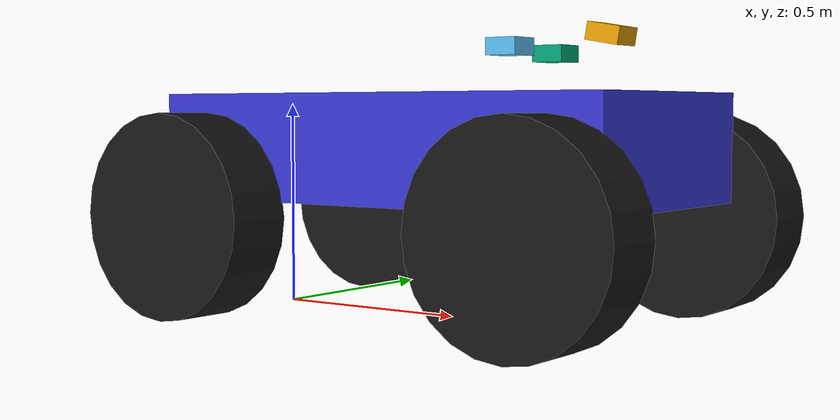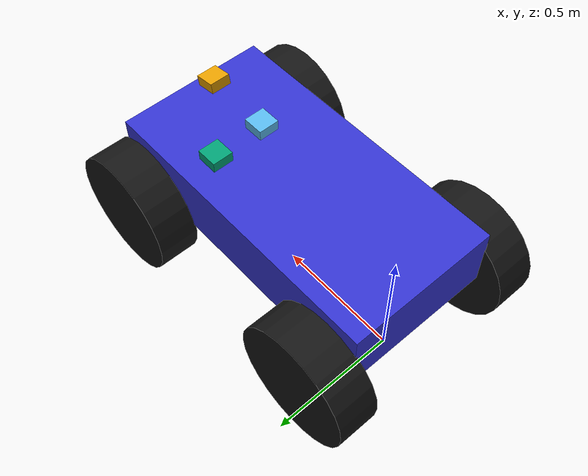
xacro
<?xml version="1.0"?>
<robot name="salus_ackermann" xmlns:xacro="http://www.ros.org/wiki/xacro">
  <xacro:arg name="use_sim" default="false"/>

  <xacro:include filename="components/chassis.xacro"/>
  <xacro:include filename="components/sensor_mounts.xacro"/>
  <xacro:include filename="components/gazebo_motion.xacro"/>

  <xacro:salus_chassis/>
  <xacro:salus_sensor_mounts/>

  <xacro:if value="$(arg use_sim)">
    <xacro:salus_gazebo_motion/>
  </xacro:if>
</robot>

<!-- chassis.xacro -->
<robot xmlns:xacro="http://www.ros.org/wiki/xacro">
  <xacro:property name="wheelbase_m" value="0.94"/>
  <xacro:property name="track_width_m" value="0.75"/>
  <xacro:property name="wheel_radius_m" value="0.24"/>
  <xacro:property name="wheel_width_m" value="0.16"/>
  <xacro:property name="steering_limit_rad" value="0.5235987756"/>

  <xacro:macro name="wheel" params="name">
    <link name="${name}_link">
      <visual>
        <origin rpy="1.57079632679 0 0"/>
        <geometry><cylinder radius="${wheel_radius_m}" length="${wheel_width_m}"/></geometry>
        <material name="black"><color rgba="0.08 0.08 0.08 1"/></material>
      </visual>
      <collision>
        <origin rpy="1.57079632679 0 0"/>
        <geometry><cylinder radius="${wheel_radius_m}" length="${wheel_width_m}"/></geometry>
      </collision>
      <inertial>
        <mass value="2.0"/>
        <inertia ixx="0.03" ixy="0" ixz="0" iyy="0.03" iyz="0" izz="0.03"/>
      </inertial>
    </link>
  </xacro:macro>

  <xacro:macro name="front_wheel" params="side y">
    <link name="front_${side}_steer_link">
      <visual><geometry><box size="0.10 0.08 0.15"/></geometry></visual>
      <collision><geometry><box size="0.10 0.08 0.15"/></geometry></collision>
      <inertial><mass value="0.5"/><inertia ixx="0.001" ixy="0" ixz="0" iyy="0.001" iyz="0" izz="0.001"/></inertial>
    </link>
    <joint name="front_${side}_steer_joint" type="revolute">
      <parent link="base_link"/><child link="front_${side}_steer_link"/>
      <origin xyz="${wheelbase_m} ${y} ${wheel_radius_m}"/>
      <axis xyz="0 0 1"/>
      <limit lower="${-steering_limit_rad}" upper="${steering_limit_rad}" effort="100" velocity="3.0"/>
    </joint>
    <xacro:wheel name="front_${side}_wheel"/>
    <joint name="front_${side}_wheel_joint" type="continuous">
      <parent link="front_${side}_steer_link"/><child link="front_${side}_wheel_link"/>
      <axis xyz="0 1 0"/><limit effort="200" velocity="100"/>
    </joint>
  </xacro:macro>

  <xacro:macro name="salus_chassis">
    <link name="base_footprint"/>
    <link name="base_link">
      <visual>
        <origin xyz="0.47 0 0.40"/>
        <geometry><box size="1.20 0.60 0.25"/></geometry>
        <material name="salus_blue"><color rgba="0.2 0.2 0.8 1"/></material>
      </visual>
      <collision>
        <origin xyz="0.47 0 0.40"/>
        <geometry><box size="1.20 0.60 0.25"/></geometry>
      </collision>
      <inertial>
        <origin xyz="0.47 0 0.40"/>
        <mass value="50.0"/>
        <inertia ixx="2.0" ixy="0" ixz="0" iyy="3.0" iyz="0" izz="4.0"/>
      </inertial>
    </link>
    <joint name="base_footprint_joint" type="fixed">
      <parent link="base_footprint"/><child link="base_link"/>
    </joint>

    <xacro:wheel name="rear_left_wheel"/>
    <joint name="rear_left_wheel_joint" type="continuous">
      <parent link="base_link"/><child link="rear_left_wheel_link"/>
      <origin xyz="0 ${track_width_m / 2.0} ${wheel_radius_m}"/>
      <axis xyz="0 1 0"/><limit effort="200" velocity="100"/>
    </joint>
    <xacro:wheel name="rear_right_wheel"/>
    <joint name="rear_right_wheel_joint" type="continuous">
      <parent link="base_link"/><child link="rear_right_wheel_link"/>
      <origin xyz="0 ${-track_width_m / 2.0} ${wheel_radius_m}"/>
      <axis xyz="0 1 0"/><limit effort="200" velocity="100"/>
    </joint>

    <xacro:front_wheel side="left" y="${track_width_m / 2.0}"/>
    <xacro:front_wheel side="right" y="${-track_width_m / 2.0}"/>
  </xacro:macro>
</robot>

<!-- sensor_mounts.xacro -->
<robot xmlns:xacro="http://www.ros.org/wiki/xacro">
  <xacro:macro name="sensor_mount" params="name xyz rpy">
    <link name="${name}">
      <visual><geometry><box size="0.08 0.08 0.04"/></geometry></visual>
      <inertial><mass value="0.05"/><inertia ixx="0.00005" ixy="0" ixz="0" iyy="0.00005" iyz="0" izz="0.00005"/></inertial>
    </link>
    <joint name="${name}_joint" type="fixed">
      <parent link="base_link"/><child link="${name}"/>
      <origin xyz="${xyz}" rpy="${rpy}"/>
    </joint>
  </xacro:macro>

  <xacro:macro name="salus_sensor_mounts">
    <xacro:sensor_mount name="lidar_link" xyz="0.92 0 0.65" rpy="0 0.1745 0"/>
    <xacro:sensor_mount name="imu_link" xyz="0.66 0 0.63" rpy="0 0 0"/>
    <xacro:sensor_mount name="gps_link" xyz="0.66 0.2 0.62" rpy="0 0 0"/>
  </xacro:macro>
</robot>
